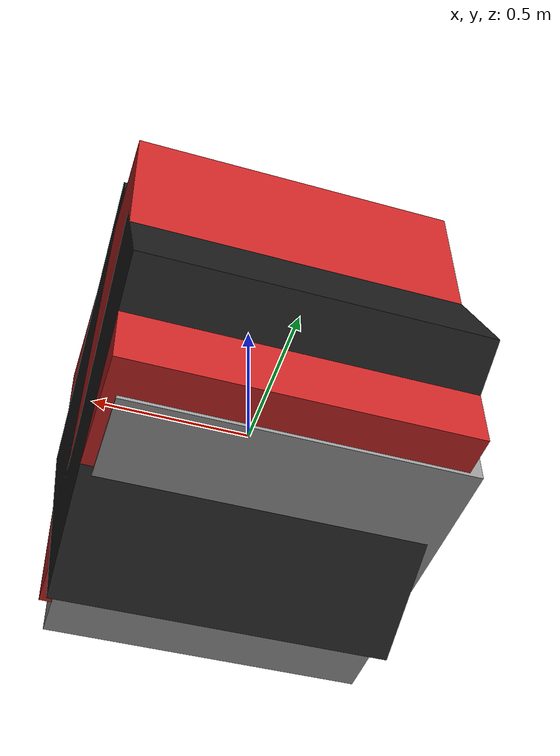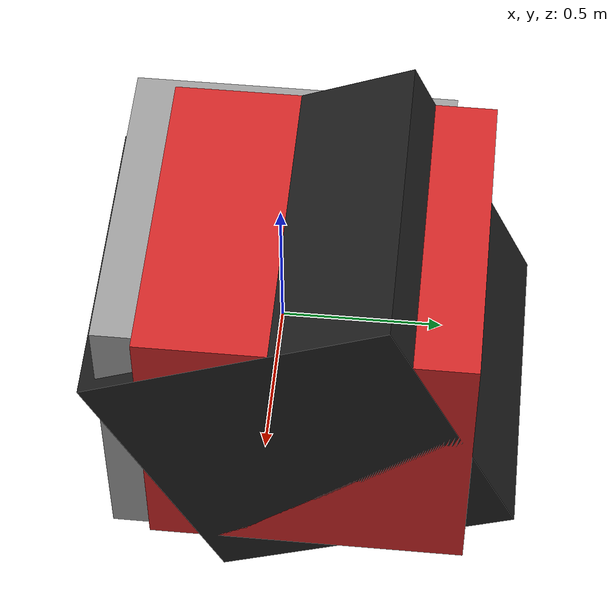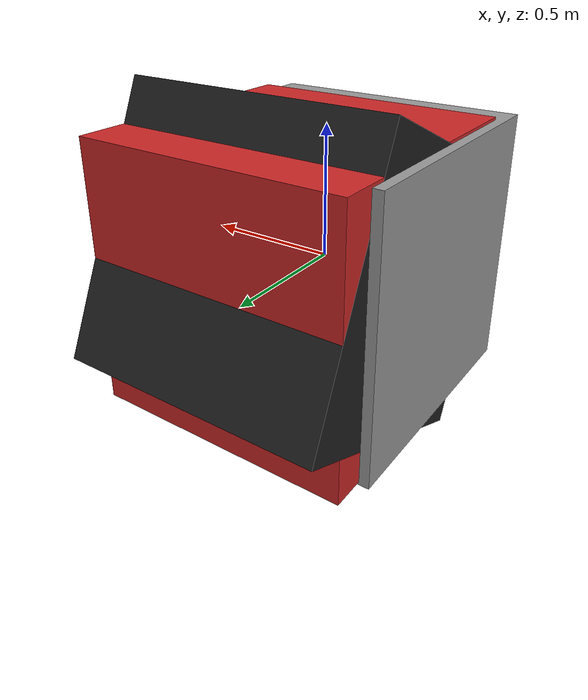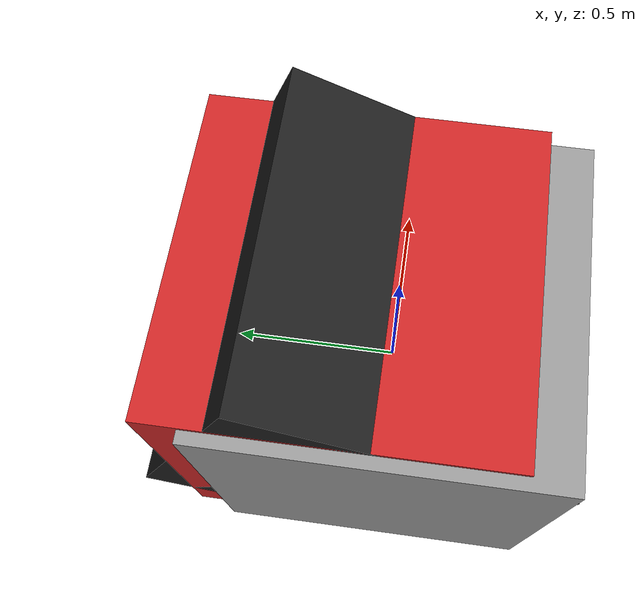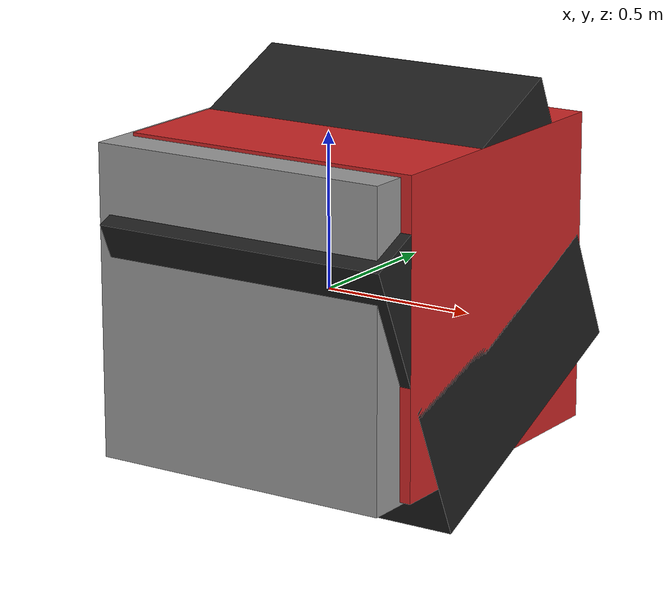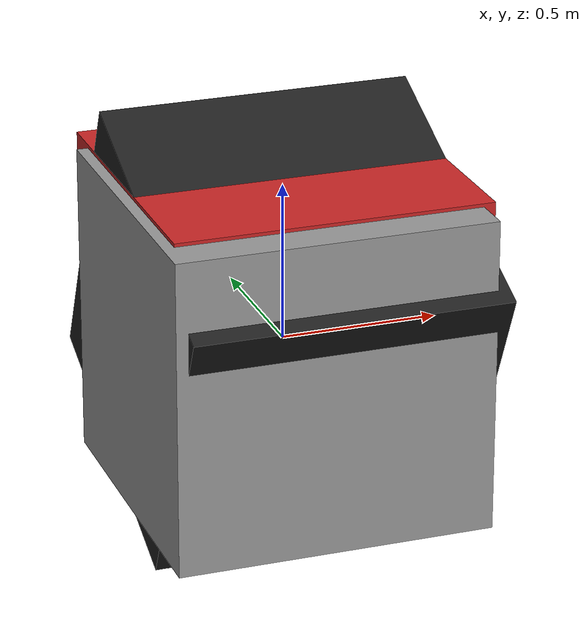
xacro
<?xml version="1.0"?>
<robot xmlns:xacro="http://www.ros.org/wiki/xacro" name="test_converter">

  <link name="link_slot1">
    <visual>
      <geometry>
        <box size="1 1 1" />
      </geometry>
      <origin xyz="0.0 0.0 0.0" rpy="0 0 0"/>
    </visual>
    <collision>
      <geometry>
        <box size="1 1 1" />
      </geometry>
      <origin xyz="0.0 0.0 0.0" rpy="0 0 0"/>
    </collision>
    <inertial>
      <mass value="5"/>
      <inertia ixx="1" ixy="0.0" ixz="0.0" iyy="1" iyz="0.0" izz="1"/>
    </inertial>
  </link>

  <link name="link_slot1_switch">
    <visual>
      <geometry>
        <box size="1 1 1" />
      </geometry>
      <origin xyz="0.0 0.0 0.0" rpy="0 0 0"/>
    </visual>
    <collision>
      <geometry>
        <box size="1 1 1" />
      </geometry>
      <origin xyz="0.0 0.0 0.0" rpy="0 0 0"/>
    </collision>
    <inertial>
      <mass value="5"/>
      <inertia ixx="1" ixy="0.0" ixz="0.0" iyy="1" iyz="0.0" izz="1"/>
    </inertial>
  </link>

  <link name="link_slot1_switch_cover">
    <visual>
      <geometry>
        <box size="1 1 1" />
      </geometry>
      <origin xyz="0.0 0.0 0.0" rpy="0 0 0"/>
    </visual>
    <collision>
      <geometry>
        <box size="1 1 1" /><box size="1 1 1" />
      </geometry>
      <origin xyz="0.0 0.0 0.0" rpy="0 0 0"/>
    </collision>
    <inertial>
      <mass value="5"/>
      <inertia ixx="1" ixy="0.0" ixz="0.0" iyy="1" iyz="0.0" izz="1"/>
    </inertial>
  </link>

  <joint name="link_slot1/link_slot1_switch" type="revolute">
    <parent link="link_slot1"/>
    <child link="link_slot1_switch"/>
    <origin rpy="0.419 0 0" xyz=".037 .111 0.005"/>
    <axis xyz="1 0 0"/>
    <limit effort="10000000.0" lower="-0.84" upper="0" velocity="1000"/>
  </joint>

  <joint name="link_slot1/link_slot1_switch_cover" type="revolute">
    <parent link="link_slot1"/>
    <child link="link_slot1_switch_cover"/>
    <origin rpy="0 0 0" xyz="0.037 0.124 0.011"/>
    <axis xyz="1 0 0"/>
    <limit effort="10000000.0" lower="-1.57" upper="0" velocity="1000"/>
  </joint>

  <gazebo reference="link_slot1">
    <material>Gazebo/Grey</material>
  </gazebo>

  <gazebo reference="link_slot1_switch">
    <material>Gazebo/Black</material>
  </gazebo>

  <gazebo reference="link_slot1_switch_cover">
    <material>Gazebo/Red</material>
  </gazebo>

</robot>
